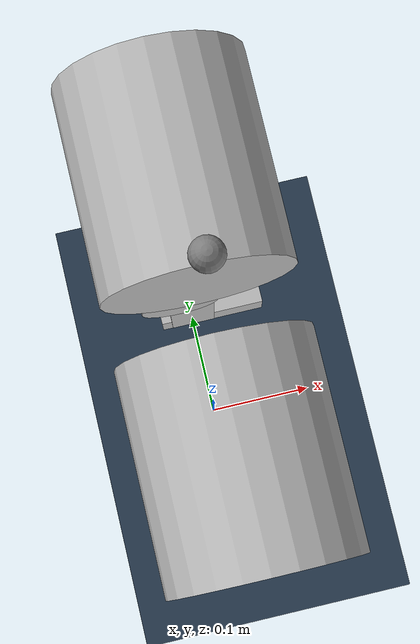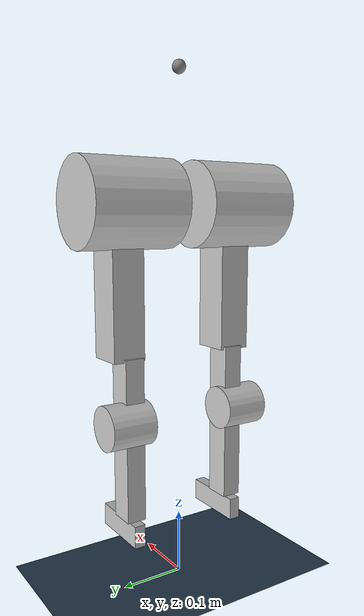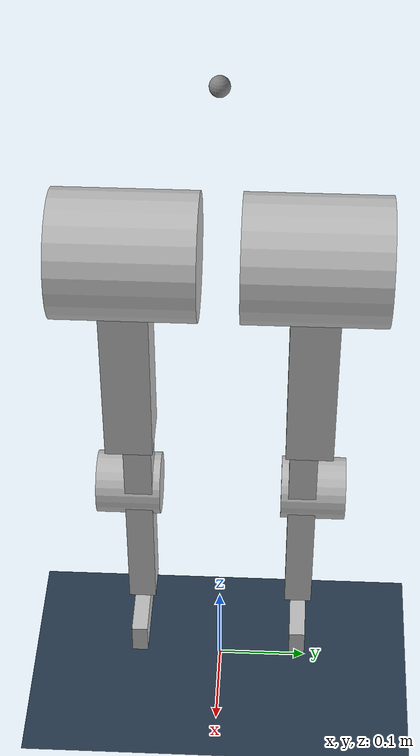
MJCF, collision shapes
<mujoco model="pdd">
  <compiler angle="radian" meshdir="../meshes/" balanceinertia="false"/>
  <option timestep='0.002' iterations='50' solver='PGS' gravity='0 0 -9.81'>
    <flag sensornoise="enable" frictionloss="enable" />
  </option>
  <size njmax="500" nconmax="100" />

  <visual>
    <quality shadowsize='4096' />
    <map znear='0.05' />
  </visual>

  <default>
    <joint limited='true' />
    <motor ctrllimited='true' />
    <geom condim='4' contype="1" conaffinity="15" solref='0.001 2' friction='0.9 0.2 0.2' />
    <equality solref='0.001 2' />
    <default class='visualgeom'>
      <geom material='visualgeom' condim='1' contype='0' conaffinity='0' />
    </default>
    <default class='visualgeom2'>
      <geom material='visualgeom2' condim='1' contype='0' conaffinity='0' />
    </default>
    <default class='obstacle'>
      <geom material='obstacle' condim='3' contype='1' conaffinity='15' />
    </default>

    <default class='joint_param'>
      <joint damping="1" frictionloss="1" armature="0.01" />
    </default>

  </default>

  <asset>
    <texture type="skybox" builtin="gradient" rgb1="0.3 0.5 0.7" rgb2="0 0 0" width="512"
      height="512" />
    <texture name="texplane" type="2d" builtin="checker" rgb1=".2 .3 .4" rgb2=".1 0.15 0.2"
      width="512" height="512" mark="cross" markrgb=".8 .8 .8" />
    <texture name="texplane2" type="2d" builtin="checker" rgb1="1 0.3137 0.1843"
      rgb2="0.0 0.30196 0.38039"
      width="512" height="512" mark="cross" markrgb=".8 .8 .8" />

    <material name="matplane" reflectance="0." texture="texplane" texrepeat="1 1" texuniform="true" />
    <material name="matplane2" reflectance="0.1" texture="texplane2" texrepeat="1 1"
      texuniform="true" />

    <material name='obstacle' rgba='0.9 0.6 0.2 1' />
    <material name='visualgeom' rgba='0.5 0.9 0.2 1' />
    <material name='visualgeom2' rgba='0.5 0.9 0.2 1' />

    <mesh name="base_link" file="base_link.STL" />
    <mesh name="leg_l1_link" file="leg_l1_link.STL" />
    <mesh name="leg_l2_link" file="leg_l2_link.STL" />
    <mesh name="leg_l3_link" file="leg_l3_link.STL" />
    <mesh name="leg_l4_link" file="leg_l4_link.STL" />
    <mesh name="leg_l5_link" file="leg_l5_link.STL" />
    <mesh name="leg_r1_link" file="leg_r1_link.STL" />
    <mesh name="leg_r2_link" file="leg_r2_link.STL" />
    <mesh name="leg_r3_link" file="leg_r3_link.STL" />
    <mesh name="leg_r4_link" file="leg_r4_link.STL" />
    <mesh name="leg_r5_link" file="leg_r5_link.STL" />

    <hfield name='hf0' nrow='200' ncol='200' size="10 5 0.2 .1" />
  </asset>
  <worldbody>
    <light directional="true" diffuse=".4 .4 .4" specular="0.1 0.1 0.1" pos="0 0 5.0" dir="0 0 -1"
      castshadow="false" />
    <light directional="true" diffuse=".6 .6 .6" specular="0.2 0.2 0.2" pos="0 0 4" dir="0 0 -1" />
    <geom name="ground" type="plane" size="0 0 1" pos="0.001 0 0" quat="1 0 0 0" material="matplane"
      condim="1" conaffinity='15' />

    <body name="base_link" pos="0.0 0.0 0.78">

      <geom type="mesh" mesh="base_link" group="1" class="visualgeom" />

      <inertial pos="-0.010856 -0.000068 -0.007128" mass="5.673631"
        diaginertia="0.034403 0.029652 0.029462" />
      <joint type='slide' axis='1 0 0' limited='false' />
      <joint type='slide' axis='0 1 0' limited='false' />
      <joint type='slide' axis='0 0 1' limited='false' />
      <joint type='ball' limited='false' />
      <site name='imu' size='0.01' pos='0.0 0 0.0' />

      <geom type="mesh" contype="0" conaffinity="0" group="1" density="0"
        rgba="0.75294 0.75294 0.75294 1" mesh="base_link" />
      <geom type="mesh" rgba="0.75294 0.75294 0.75294 1" mesh="base_link" class="visualgeom" />
      <body name="leg_l1_link" pos="-0.002 0.09 -0.1035">
        <inertial pos="0.002501 5.3e-05 -0.002722" quat="0.472677 0.527005 0.495251 0.503556"
          mass="0.453728" diaginertia="0.000163063 0.000147076 8.18618e-05" />
        <joint name="leg_l1_joint" pos="0 0 0" axis="1 0 0" limited="true" range="-0.2 0.5"
          frictionloss="0.2" />
        <body name="leg_l2_link" pos="0 -0.00016972 -0.0325">
          <inertial pos="-0.000273 0.043826 -0.058639" quat="0.7074 0.0648812 -0.0612384 0.70116"
            mass="0.925998" diaginertia="0.00166463 0.00123897 0.0010754" />
          <joint name="leg_l2_joint" pos="0 0 0" axis="0 0 1" limited="true" range="-0.5 1"
            frictionloss="0.2" />
          <geom size="0.065 0.073" pos="0 0.0046 -0.057" quat="0.707388 0.706825 0 0"
            type="cylinder"
            rgba="0.75294 0.75294 0.75294 1" />
          <body name="leg_l3_link" pos="0 -0.01433 -0.0575">
            <inertial pos="0.003163 -0.022552 -0.027258"
              quat="0.678041 0.0230005 -0.0875592 0.729428"
              mass="1.39047" diaginertia="0.00722081 0.00694653 0.00181065" />
            <joint name="leg_l3_joint" pos="0 0 0" axis="0 1 0" limited="true" range="-0.8 1.2"
              frictionloss="0.2" />
            <geom size="0.03 0.125 0.025" pos="0.015 0.02 -0.1" quat="0.707388 0.706825 0 0"
              type="box" rgba="0.75294 0.75294 0.75294 1" />
            <body name="leg_l4_link" pos="0 0.0145 -0.24">
              <inertial pos="-0.012044 0.006361 -0.093905"
                quat="0.696191 0.0388817 0.0714045 0.713237" mass="0.649518"
                diaginertia="0.00246473 0.00221871 0.000430556" />
              <joint name="leg_l4_joint" pos="0 0 0" axis="0 1 0" limited="true" range="0 1.5"
                frictionloss="0.2" />
              <geom size="0.0205 0.125 0.015" pos="0 0 -0.105" quat="0.707388 0.706825 0 0"
                type="box"
                rgba="0.75294 0.75294 0.75294 1" />
              <geom size="0.034 0.035" pos="-0.011 0.012 -0.079" quat="0.707388 0.706825 0 0"
                type="cylinder" rgba="0.75294 0.75294 0.75294 1" />
              <body name="leg_l5_link" pos="0.005 0 -0.23995">
                <inertial pos="0.012435 -0.0 -0.015511"
                  quat="0.5 0.5 0.5 0.5"
                  mass="0.090265" diaginertia="0.00024 0.00024 1.5e-05"/>
                <joint name="leg_l5_joint" pos="0 0 0" axis="0 1 0" limited="true" range="-1.1 1.1"
                  damping="0.01" frictionloss="0.2" />
                <geom size="0.05005 0.01725 0.00875" pos="0.01503 0 -0.0102"
                  quat="0.707388 0.706825 0 0" type="box" rgba="0.75294 0.75294 0.75294 1" />
              </body>
            </body>
          </body>
        </body>
      </body>
      <body name="leg_r1_link" pos="-0.002 -0.09 -0.1035">
        <inertial pos="0.002501 -5.3e-05 -0.002722" quat="0.503556 0.495251 0.527005 0.472677"
          mass="0.453728" diaginertia="0.000163063 0.000147076 8.18618e-05" />
        <joint name="leg_r1_joint" pos="0 0 0" axis="1 0 0" limited="true" range="-0.5 0.2"
          frictionloss="0.2" />
        <body name="leg_r2_link" pos="0 0.00016972 -0.0325">
          <inertial pos="9e-05 -0.043826 -0.058639" quat="0.7074 -0.0648812 0.0612384 0.70116"
            mass="0.925998" diaginertia="0.00166463 0.00123897 0.0010754" />
          <joint name="leg_r2_joint" pos="0 0 0" axis="0 0 1" limited="true" range="-1 0.5"
            frictionloss="0.2" />
          <geom size="0.065 0.073" pos="0 -0.0033 -0.057" quat="0.707388 0.706825 0 0"
            type="cylinder"
            rgba="0.75294 0.75294 0.75294 1" />
          <body name="leg_r3_link" pos="0 0.01633 -0.0575">
            <inertial pos="0.003311 0.02265 -0.027271" quat="0.734236 -0.0877978 0.023126 0.672795"
              mass="1.38862" diaginertia="0.00722344 0.00694292 0.00180965" />
            <joint name="leg_r3_joint" pos="0 0 0" axis="0 1 0" limited="true" range="-0.8 1.2"
              frictionloss="0.2" />
            <geom size="0.03 0.125 0.025" pos="0.015 -0.02 -0.1" quat="0.707388 0.706825 0 0"
              type="box" rgba="0.75294 0.75294 0.75294 1" />
            <body name="leg_r4_link" pos="0 -0.0145 -0.24">
              <inertial pos="-0.007886 -0.007123 -0.088091"
                quat="0.656271 0.072878 0.0339591 0.750229" mass="0.61472"
                diaginertia="0.0024688 0.00221407 0.000431126" />
              <joint name="leg_r4_joint" pos="0 0 0" axis="0 1 0" limited="true" range="0 1.5"
                frictionloss="0.2" />
              <geom size="0.0205 0.125 0.015" pos="0 0 -0.105" quat="0.707388 0.706825 0 0"
                type="box"
                rgba="0.75294 0.75294 0.75294 1" />
              <geom size="0.034 0.035" pos="-0.011 -0.012 -0.079" quat="0.707388 0.706825 0 0"
                type="cylinder" rgba="0.75294 0.75294 0.75294 1" />
              <body name="leg_r5_link" pos="0.005 0 -0.23995">
                <inertial pos="0.012435 -0.0 -0.015511"
                  quat="0.5 0.5 0.5 0.5"
                  mass="0.090265" diaginertia="0.00024 0.00024 1.5e-05"/>
                <joint name="leg_r5_joint" pos="0 0 0" axis="0 1 0" limited="true" range="-1.1 1.1"
                  damping="0.01" frictionloss="0.2" />
                <geom size="0.05005 0.01725 0.00875" pos="0.01503 0 -0.0102"
                  quat="0.707388 0.706825 0 0" type="box" rgba="0.75294 0.75294 0.75294 1" />
              </body>
            </body>
          </body>
        </body>
      </body>
    </body>

  </worldbody>
  <actuator>
    <motor name="leg_l1_joint" joint="leg_l1_joint" gear="1" ctrllimited="true" ctrlrange="-100 100" />
    <motor name="leg_l2_joint" joint="leg_l2_joint" gear="1" ctrllimited="true" ctrlrange="-100 100" />
    <motor name="leg_l3_joint" joint="leg_l3_joint" gear="1" ctrllimited="true" ctrlrange="-100 100" />
    <motor name="leg_l4_joint" joint="leg_l4_joint" gear="1" ctrllimited="true" ctrlrange="-100 100" />
    <motor name="leg_l5_joint" joint="leg_l5_joint" gear="1" ctrllimited="true" ctrlrange="-100 100" />
    <motor name="leg_r1_joint" joint="leg_r1_joint" gear="1" ctrllimited="true" ctrlrange="-100 100" />
    <motor name="leg_r2_joint" joint="leg_r2_joint" gear="1" ctrllimited="true" ctrlrange="-100 100" />
    <motor name="leg_r3_joint" joint="leg_r3_joint" gear="1" ctrllimited="true" ctrlrange="-100 100" />
    <motor name="leg_r4_joint" joint="leg_r4_joint" gear="1" ctrllimited="true" ctrlrange="-100 100" />
    <motor name="leg_r5_joint" joint="leg_r5_joint" gear="1" ctrllimited="true" ctrlrange="-100 100" />
  </actuator>
  <sensor>
    <actuatorpos name='leg_l1_joint_p' actuator='leg_l1_joint' user='13' />
    <actuatorpos name='leg_l2_joint_p' actuator='leg_l2_joint' user='13' />
    <actuatorpos name='leg_l3_joint_p' actuator='leg_l3_joint' user='13' />
    <actuatorpos name='leg_l4_joint_p' actuator='leg_l4_joint' user='13' />
    <actuatorpos name='leg_l5_joint_p' actuator='leg_l5_joint' user='13' />
    <actuatorpos name='leg_r1_joint_p' actuator='leg_r1_joint' user='13' />
    <actuatorpos name='leg_r2_joint_p' actuator='leg_r2_joint' user='13' />
    <actuatorpos name='leg_r3_joint_p' actuator='leg_r3_joint' user='13' />
    <actuatorpos name='leg_r4_joint_p' actuator='leg_r4_joint' user='13' />
    <actuatorpos name='leg_r5_joint_p' actuator='leg_r5_joint' user='13' />

    <actuatorvel name='leg_l1_joint_v' actuator='leg_l1_joint' user='13' />
    <actuatorvel name='leg_l2_joint_v' actuator='leg_l2_joint' user='13' />
    <actuatorvel name='leg_l3_joint_v' actuator='leg_l3_joint' user='13' />
    <actuatorvel name='leg_l4_joint_v' actuator='leg_l4_joint' user='13' />
    <actuatorvel name='leg_l5_joint_v' actuator='leg_l5_joint' user='13' />
    <actuatorvel name='leg_r1_joint_v' actuator='leg_r1_joint' user='13' />
    <actuatorvel name='leg_r2_joint_v' actuator='leg_r2_joint' user='13' />
    <actuatorvel name='leg_r3_joint_v' actuator='leg_r3_joint' user='13' />
    <actuatorvel name='leg_r4_joint_v' actuator='leg_r4_joint' user='13' />
    <actuatorvel name='leg_r5_joint_v' actuator='leg_r5_joint' user='13' />

    <actuatorfrc name='leg_l1_joint_f' actuator='leg_l1_joint' user='13' />
    <actuatorfrc name='leg_l2_joint_f' actuator='leg_l2_joint' user='13' />
    <actuatorfrc name='leg_l3_joint_f' actuator='leg_l3_joint' user='13' />
    <actuatorfrc name='leg_l4_joint_f' actuator='leg_l4_joint' user='13' />
    <actuatorfrc name='leg_l5_joint_f' actuator='leg_l5_joint' user='13' />
    <actuatorfrc name='leg_r1_joint_f' actuator='leg_r1_joint' user='13' />
    <actuatorfrc name='leg_r2_joint_f' actuator='leg_r2_joint' user='13' />
    <actuatorfrc name='leg_r3_joint_f' actuator='leg_r3_joint' user='13' />
    <actuatorfrc name='leg_r4_joint_f' actuator='leg_r4_joint' user='13' />
    <actuatorfrc name='leg_r5_joint_f ' actuator='leg_r5_joint' user='13' />

    <framequat name='orientation' objtype='site' noise='0.001' objname='imu' />
    <framepos name='position' objtype='site' noise='0.001' objname='imu' />
    <gyro name='angular-velocity' site='imu' noise='0.005' cutoff='34.9' />
    <velocimeter name='linear-velocity' site='imu' noise='0.001' cutoff='30' />
    <accelerometer name='linear-acceleration' site='imu' noise='0.005' cutoff='157' />
    <magnetometer name='magnetometer' site='imu' />

  </sensor>
</mujoco>
